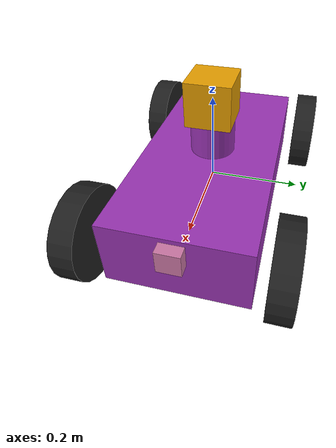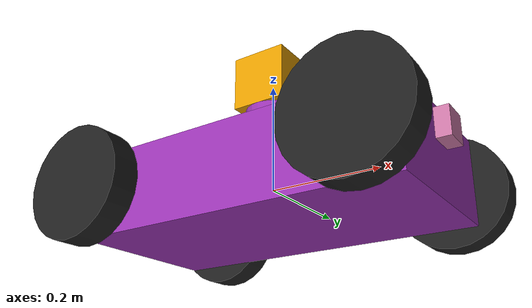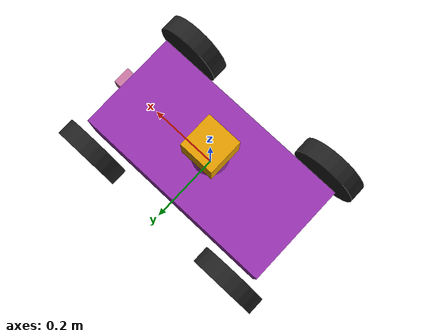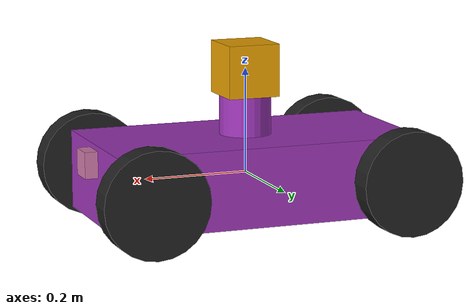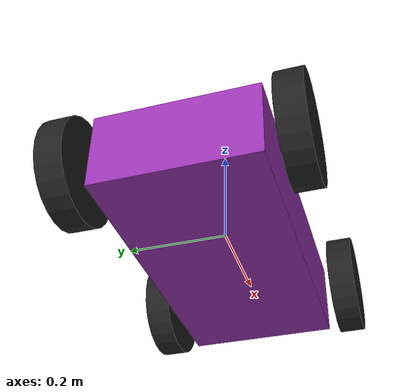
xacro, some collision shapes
<?xml version='1.0'?>

<robot name="my_robot" xmlns:xacro="http://www.ros.org/wiki/xacro">

  <xacro:include filename="$(find my_robot)/urdf/my_robot.gazebo"/>

  <link name="robot_footprint"></link>

  <joint name="robot_footprint_joint" type="fixed">
    <origin xyz="0 0 0" rpy="0 0 0"/>
    <parent link="robot_footprint"/>
    <child link="chassis"/>
  </joint>

  <link name='chassis'>
    <origin xyz="0 0 0" rpy="0 0 0"/>

    <inertial>
      <mass value="20.0"/>
      <origin xyz="0 0 0" rpy="0 0 0"/>
      <inertia ixx="0.1" ixy="0" ixz="0"
               iyy="0.1" iyz="0"
               izz="0.1"
      />
    </inertial>

    <collision name='chassis_collision'>
      <origin xyz="0 0 0" rpy=" 0 0 0"/>
      <geometry>
        <box size=".6 .3 .1"/>
      </geometry>
    </collision>

    <visual name='chassis_visual'>
      <origin xyz="0 0 0" rpy=" 0 0 0"/>
      <geometry>
        <box size=".6 .3 .15"/>
      </geometry>
    </visual>

    <collision name='hokuyo_base_collision'>
      <origin xyz="0 0 0.12" rpy=" 0 0 0"/>
      <geometry>
        <cylinder length="0.1" radius="0.05"/>
      </geometry>
    </collision>

    <visual name='hokuyo_base_visual'>
      <origin xyz="0 0 0.12" rpy=" 0 0 0"/>
      <geometry>
        <cylinder length="0.1" radius="0.05"/>
      </geometry>
    </visual>
  </link>

  <joint type="continuous" name="front_left_wheel_hinge">
    <origin xyz="0.25 0.2 0" rpy="0 0 0"/>
    <child link="front_left_wheel"/>
    <parent link="chassis"/>
    <axis xyz="0 1 0" rpy="0 0 0"/>
    <limit effort="10000" velocity="1000"/>
    <dynamics damping="1.0" friction="1.0"/>
  </joint>

  <link name="front_left_wheel">
    <origin xyz="0 0 0" rpy="0 0 0"/>

    <inertial>
      <mass value="5.0"/>
      <inertia ixx="0.1" ixy="0" ixz="0"
               iyy="0.1" iyz="0"
               izz="0.1"/>
    </inertial>

    <collision name='front_left_wheel_collision'>
      <origin xyz="0 0 0" rpy=" 0 1.5707 1.5707"/>
      <geometry>
        <cylinder length="0.05" radius="0.1"/>
      </geometry>
    </collision>

    <visual name='front_left_wheel_visual'>
      <origin xyz="0 0 0" rpy=" 0 1.5707 1.5707"/>
      <geometry>
        <cylinder length="0.05" radius="0.1"/>
      </geometry>
    </visual>

  </link>

  <joint type="continuous" name="front_right_wheel_hinge">
    <origin xyz="0.25 -0.2 0" rpy="0 0 0"/>
    <child link="front_right_wheel"/>
    <parent link="chassis"/>
    <axis xyz="0 1 0" rpy="0 0 0"/>
    <limit effort="10000" velocity="1000"/>
    <dynamics damping="1.0" friction="1.0"/>
  </joint>

  <link name="front_right_wheel">

    <origin xyz="0 0 0" rpy="0 0 0"/>

    <inertial>
      <mass value="5.0"/>
      <inertia ixx="0.1" ixy="0" ixz="0"
               iyy="0.1" iyz="0"
               izz="0.1"/>
    </inertial>

    <collision name='front_right_wheel_collision'>
      <origin xyz="0 0 0" rpy=" 0 1.5707 1.5707"/>
      <geometry>
        <cylinder length="0.05" radius="0.1"/>
      </geometry>
    </collision>

    <visual name='front_right_wheel_visual'>
      <origin xyz="0 0 0" rpy=" 0 1.5707 1.5707"/>
      <geometry>
        <cylinder length="0.05" radius="0.1"/>
      </geometry>
    </visual>

  </link>

  <joint type="continuous" name="back_left_wheel_hinge">
    <origin xyz="-0.25 0.2 0" rpy="0 0 0"/>
    <child link="back_left_wheel"/>
    <parent link="chassis"/>
    <axis xyz="0 1 0" rpy="0 0 0"/>
    <limit effort="10000" velocity="1000"/>
    <dynamics damping="1.0" friction="1.0"/>
  </joint>

  <link name="back_left_wheel">
    <origin xyz="0 0 0" rpy="0 0 0"/>

    <inertial>
      <mass value="5.0"/>
      <inertia ixx="0.1" ixy="0" ixz="0"
               iyy="0.1" iyz="0"
               izz="0.1"/>
    </inertial>

    <collision name='back_left_wheel_collision'>
      <origin xyz="0 0 0" rpy=" 0 1.5707 1.5707"/>
      <geometry>
        <cylinder length="0.05" radius="0.1"/>
      </geometry>
    </collision>

    <visual name='back_left_wheel_visual'>
      <origin xyz="0 0 0" rpy=" 0 1.5707 1.5707"/>
      <geometry>
        <cylinder length="0.05" radius="0.1"/>
      </geometry>
    </visual>

  </link>

  <joint type="continuous" name="back_right_wheel_hinge">
    <origin xyz="-0.25 -0.2 0" rpy="0 0 0"/>
    <child link="back_right_wheel"/>
    <parent link="chassis"/>
    <axis xyz="0 1 0" rpy="0 0 0"/>
    <limit effort="10000" velocity="1000"/>
    <dynamics damping="1.0" friction="1.0"/>
  </joint>

  <link name="back_right_wheel">

    <origin xyz="0 0 0" rpy="0 0 0"/>

    <inertial>
      <mass value="5.0"/>
      <inertia ixx="0.1" ixy="0" ixz="0"
               iyy="0.1" iyz="0"
               izz="0.1"/>
    </inertial>

    <collision name='back_right_wheel_collision'>
      <origin xyz="0 0 0" rpy=" 0 1.5707 1.5707"/>
      <geometry>
        <cylinder length="0.05" radius="0.1"/>
      </geometry>
    </collision>

    <visual name='back_right_wheel_visual'>
      <origin xyz="0 0 0" rpy=" 0 1.5707 1.5707"/>
      <geometry>
        <cylinder length="0.05" radius="0.1"/>
      </geometry>
    </visual>

  </link>

  <joint type="fixed" name="camera_joint">
    <origin xyz="0.3 0 0.04" rpy="0 0 0"/>
    <child link="camera_link"/>
    <parent link="chassis"/>
    <axis xyz="0 1 0" rpy="0 0 0"/>
  </joint>

  <link name="camera_link">

    <origin xyz="0 0 0" rpy="0 0 0"/>

    <inertial>
      <mass value="0.1"/>
      <inertia ixx="1e-6" ixy="0" ixz="0"
               iyy="1e-6" iyz="0"
               izz="1e-6"/>
    </inertial>

    <collision name='camera_collision'>
      <origin xyz="0 0 0" rpy=" 0 0 0"/>
      <geometry>
        <box size="0.05 0.05 0.05"/>
      </geometry>
    </collision>

    <visual name='camera_visual'>
      <origin xyz="0 0 0" rpy=" 0 0 0"/>
      <geometry>
        <box size="0.05 0.05 0.05"/>
      </geometry>
    </visual>

  </link>

  <joint type="fixed" name="camera_optical_joint">
    <origin xyz="0 0 0" rpy="-1.5707 0 -1.5707"/>
    <parent link="camera_link"/>
    <child link="camera_link_optical"/>
  </joint>

  <link name="camera_link_optical">
  </link>

  <joint type="fixed" name="hokuyo_joint">
    <origin xyz="0 0 0.2" rpy="0 0 0"/>
    <child link="hokuyo"/>
    <parent link="chassis"/>
    <axis xyz="0 1 0" rpy="0 0 0"/>
  </joint>

  <link name="hokuyo">
    <origin xyz="0 0 0" rpy="0 0 0"/>

    <inertial>
      <mass value="1e-5"/>
      <inertia ixx="1e-6" ixy="0" ixz="0"
               iyy="1e-6" iyz="0"
               izz="1e-6"/>
    </inertial>

    <collision name='hokuyo_collision'>
      <origin xyz="0 0 0" rpy=" 0 0 0"/>
      <geometry>
        <box size="0.1 0.1 0.1"/>
      </geometry>
    </collision>

    <visual name='hokuyo_visual'>
      <origin xyz="0 0 0" rpy=" 0 0 0"/>
      <geometry>
        <mesh filename="package://my_robot/meshes/hokuyo.dae"/>
      </geometry>
    </visual>

  </link>

<gazebo reference="front_left_wheel">
    <material>Gazebo/Black</material>
</gazebo>

<gazebo reference="front_right_wheel">
    <material>Gazebo/Black</material>
</gazebo>

<gazebo reference="back_left_wheel">
    <material>Gazebo/Black</material>
</gazebo>

<gazebo reference="back_right_wheel">
    <material>Gazebo/Black</material>
</gazebo>

<gazebo reference="chassis">
    <material>Gazebo/Purple</material>
</gazebo>

<gazebo reference="camera">
    <material>Gazebo/Green</material>
</gazebo>

</robot>
